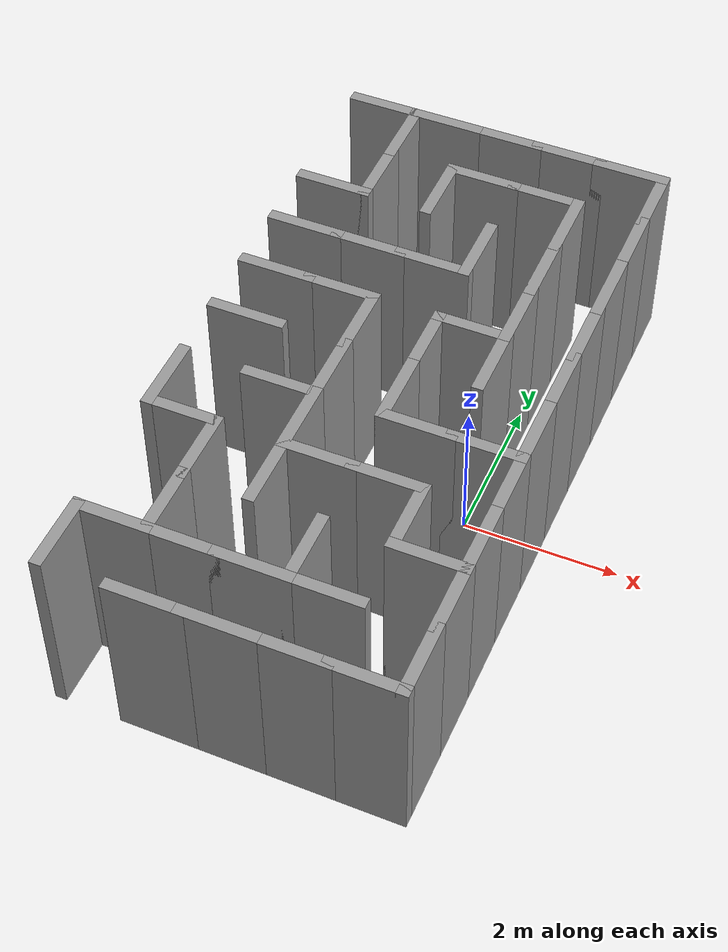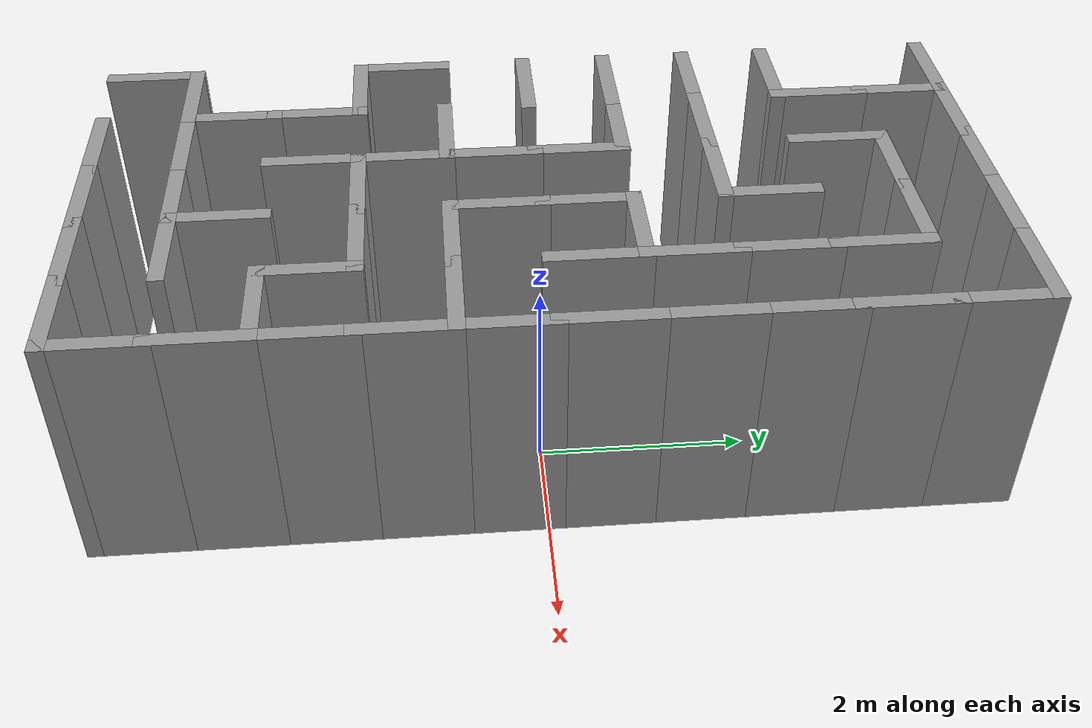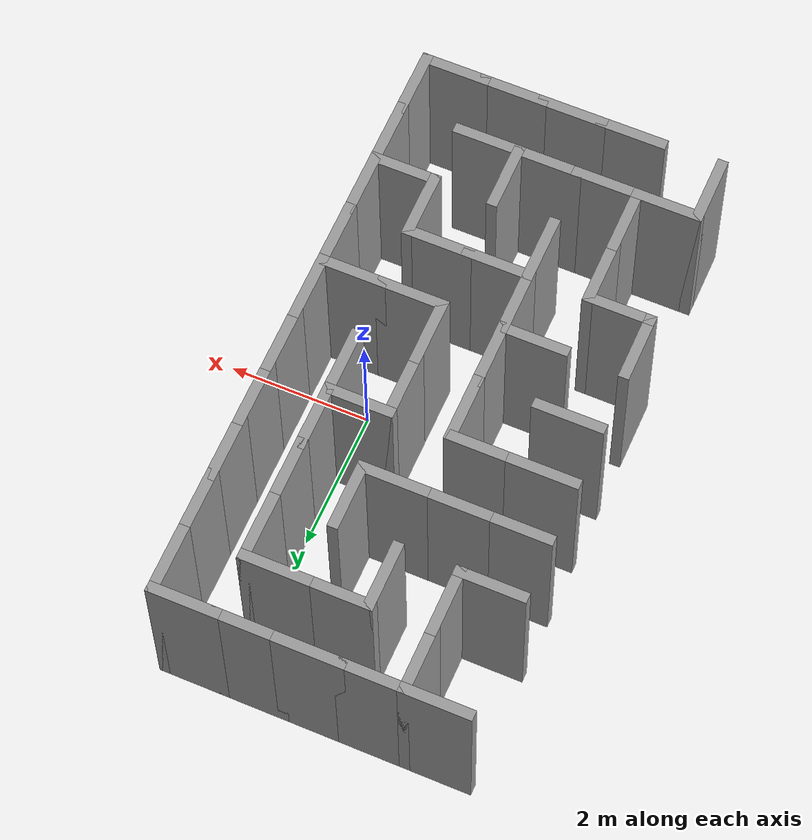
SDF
<sdf version="1.6">
 <model name="maze_2">
  <pose>-3.32543 0.082709 0 0 -0 0</pose>
  <link name="Wall_10">
   <collision name="Wall_10_Collision">
    <geometry><box><size>1 0.15 2.5</size></box></geometry>
    <pose>0 0 1.25 0 -0 0</pose>
   </collision>
   <visual name="Wall_10_Visual">
    <pose>0 0 1.25 0 -0 0</pose>
    <geometry><box><size>1 0.15 2.5</size></box></geometry>
    <material>
     <script><uri>file://media/materials/scripts/gazebo.material</uri><name>Gazebo/Grey</name></script>
     <ambient>1 1 1 1</ambient>
    </material>
    <meta><layer>0</layer></meta>
   </visual>
   <pose>4.25 3.825 0 0 -0 -1.5708</pose>
  </link>
  <link name="Wall_106">
   <collision name="Wall_106_Collision">
    <geometry><box><size>1 0.15 2.5</size></box></geometry>
    <pose>0 0 1.25 0 -0 0</pose>
   </collision>
   <visual name="Wall_106_Visual">
    <pose>0 0 1.25 0 -0 0</pose>
    <geometry><box><size>1 0.15 2.5</size></box></geometry>
    <material>
     <script><uri>file://media/materials/scripts/gazebo.material</uri><name>Gazebo/Grey</name></script>
     <ambient>1 1 1 1</ambient>
    </material>
    <meta><layer>0</layer></meta>
   </visual>
   <pose>1.275 -0.85 0 0 -0 0</pose>
  </link>
  <link name="Wall_108">
   <collision name="Wall_108_Collision">
    <geometry><box><size>1 0.15 2.5</size></box></geometry>
    <pose>0 0 1.25 0 -0 0</pose>
   </collision>
   <visual name="Wall_108_Visual">
    <pose>0 0 1.25 0 -0 0</pose>
    <geometry><box><size>1 0.15 2.5</size></box></geometry>
    <material>
     <script><uri>file://media/materials/scripts/gazebo.material</uri><name>Gazebo/Grey</name></script>
     <ambient>1 1 1 1</ambient>
    </material>
    <meta><layer>0</layer></meta>
   </visual>
   <pose>2.975 -0.85 0 0 -0 0</pose>
  </link>
  <link name="Wall_109">
   <collision name="Wall_109_Collision">
    <geometry><box><size>1 0.15 2.5</size></box></geometry>
    <pose>0 0 1.25 0 -0 0</pose>
   </collision>
   <visual name="Wall_109_Visual">
    <pose>0 0 1.25 0 -0 0</pose>
    <geometry><box><size>1 0.15 2.5</size></box></geometry>
    <material>
     <script><uri>file://media/materials/scripts/gazebo.material</uri><name>Gazebo/Grey</name></script>
     <ambient>1 1 1 1</ambient>
    </material>
    <meta><layer>0</layer></meta>
   </visual>
   <pose>3.825 -0.85 0 0 -0 0</pose>
  </link>
  <link name="Wall_11">
   <collision name="Wall_11_Collision">
    <geometry><box><size>1 0.15 2.5</size></box></geometry>
    <pose>0 0 1.25 0 -0 0</pose>
   </collision>
   <visual name="Wall_11_Visual">
    <pose>0 0 1.25 0 -0 0</pose>
    <geometry><box><size>1 0.15 2.5</size></box></geometry>
    <material>
     <script><uri>file://media/materials/scripts/gazebo.material</uri><name>Gazebo/Grey</name></script>
     <ambient>1 1 1 1</ambient>
    </material>
    <meta><layer>0</layer></meta>
   </visual>
   <pose>4.25 2.975 0 0 -0 -1.5708</pose>
  </link>
  <link name="Wall_112">
   <collision name="Wall_112_Collision">
    <geometry><box><size>1 0.15 2.5</size></box></geometry>
    <pose>0 0 1.25 0 -0 0</pose>
   </collision>
   <visual name="Wall_112_Visual">
    <pose>0 0 1.25 0 -0 0</pose>
    <geometry><box><size>1 0.15 2.5</size></box></geometry>
    <material>
     <script><uri>file://media/materials/scripts/gazebo.material</uri><name>Gazebo/Grey</name></script>
     <ambient>1 1 1 1</ambient>
    </material>
    <meta><layer>0</layer></meta>
   </visual>
   <pose>2.975 -1.7 0 0 -0 3.14159</pose>
  </link>
  <link name="Wall_113">
   <collision name="Wall_113_Collision">
    <geometry><box><size>1 0.15 2.5</size></box></geometry>
    <pose>0 0 1.25 0 -0 0</pose>
   </collision>
   <visual name="Wall_113_Visual">
    <pose>0 0 1.25 0 -0 0</pose>
    <geometry><box><size>1 0.15 2.5</size></box></geometry>
    <material>
     <script><uri>file://media/materials/scripts/gazebo.material</uri><name>Gazebo/Grey</name></script>
     <ambient>1 1 1 1</ambient>
    </material>
    <meta><layer>0</layer></meta>
   </visual>
   <pose>2.125 -1.7 0 0 -0 3.14159</pose>
  </link>
  <link name="Wall_115">
   <collision name="Wall_115_Collision">
    <geometry><box><size>1 0.15 2.5</size></box></geometry>
    <pose>0 0 1.25 0 -0 0</pose>
   </collision>
   <visual name="Wall_115_Visual">
    <pose>0 0 1.25 0 -0 0</pose>
    <geometry><box><size>1 0.15 2.5</size></box></geometry>
    <material>
     <script><uri>file://media/materials/scripts/gazebo.material</uri><name>Gazebo/Grey</name></script>
     <ambient>1 1 1 1</ambient>
    </material>
    <meta><layer>0</layer></meta>
   </visual>
   <pose>0.425 -1.7 0 0 -0 3.14159</pose>
  </link>
  <link name="Wall_12">
   <collision name="Wall_12_Collision">
    <geometry><box><size>1 0.15 2.5</size></box></geometry>
    <pose>0 0 1.25 0 -0 0</pose>
   </collision>
   <visual name="Wall_12_Visual">
    <pose>0 0 1.25 0 -0 0</pose>
    <geometry><box><size>1 0.15 2.5</size></box></geometry>
    <material>
     <script><uri>file://media/materials/scripts/gazebo.material</uri><name>Gazebo/Grey</name></script>
     <ambient>1 1 1 1</ambient>
    </material>
    <meta><layer>0</layer></meta>
   </visual>
   <pose>4.25 2.125 0 0 -0 -1.5708</pose>
  </link>
  <link name="Wall_13">
   <collision name="Wall_13_Collision">
    <geometry><box><size>1 0.15 2.5</size></box></geometry>
    <pose>0 0 1.25 0 -0 0</pose>
   </collision>
   <visual name="Wall_13_Visual">
    <pose>0 0 1.25 0 -0 0</pose>
    <geometry><box><size>1 0.15 2.5</size></box></geometry>
    <material>
     <script><uri>file://media/materials/scripts/gazebo.material</uri><name>Gazebo/Grey</name></script>
     <ambient>1 1 1 1</ambient>
    </material>
    <meta><layer>0</layer></meta>
   </visual>
   <pose>4.25 1.275 0 0 -0 -1.5708</pose>
  </link>
  <link name="Wall_132">
   <collision name="Wall_132_Collision">
    <geometry><box><size>1 0.15 2.5</size></box></geometry>
    <pose>0 0 1.25 0 -0 0</pose>
   </collision>
   <visual name="Wall_132_Visual">
    <pose>0 0 1.25 0 -0 0</pose>
    <geometry><box><size>1 0.15 2.5</size></box></geometry>
    <material>
     <script><uri>file://media/materials/scripts/gazebo.material</uri><name>Gazebo/Grey</name></script>
     <ambient>1 1 1 1</ambient>
    </material>
    <meta><layer>0</layer></meta>
   </visual>
   <pose>3.825 -2.55 0 0 -0 0</pose>
  </link>
  <link name="Wall_139">
   <collision name="Wall_139_Collision">
    <geometry><box><size>1 0.15 2.5</size></box></geometry>
    <pose>0 0 1.25 0 -0 0</pose>
   </collision>
   <visual name="Wall_139_Visual">
    <pose>0 0 1.25 0 -0 0</pose>
    <geometry><box><size>1 0.15 2.5</size></box></geometry>
    <material>
     <script><uri>file://media/materials/scripts/gazebo.material</uri><name>Gazebo/Grey</name></script>
     <ambient>1 1 1 1</ambient>
    </material>
    <meta><layer>0</layer></meta>
   </visual>
   <pose>0.425 -3.4 0 0 -0 0</pose>
  </link>
  <link name="Wall_14">
   <collision name="Wall_14_Collision">
    <geometry><box><size>1 0.15 2.5</size></box></geometry>
    <pose>0 0 1.25 0 -0 0</pose>
   </collision>
   <visual name="Wall_14_Visual">
    <pose>0 0 1.25 0 -0 0</pose>
    <geometry><box><size>1 0.15 2.5</size></box></geometry>
    <material>
     <script><uri>file://media/materials/scripts/gazebo.material</uri><name>Gazebo/Grey</name></script>
     <ambient>1 1 1 1</ambient>
    </material>
    <meta><layer>0</layer></meta>
   </visual>
   <pose>4.25 0.425 0 0 -0 -1.5708</pose>
  </link>
  <link name="Wall_140">
   <collision name="Wall_140_Collision">
    <geometry><box><size>1 0.15 2.5</size></box></geometry>
    <pose>0 0 1.25 0 -0 0</pose>
   </collision>
   <visual name="Wall_140_Visual">
    <pose>0 0 1.25 0 -0 0</pose>
    <geometry><box><size>1 0.15 2.5</size></box></geometry>
    <material>
     <script><uri>file://media/materials/scripts/gazebo.material</uri><name>Gazebo/Grey</name></script>
     <ambient>1 1 1 1</ambient>
    </material>
    <meta><layer>0</layer></meta>
   </visual>
   <pose>1.275 -3.4 0 0 -0 0</pose>
  </link>
  <link name="Wall_141">
   <collision name="Wall_141_Collision">
    <geometry><box><size>1 0.15 2.5</size></box></geometry>
    <pose>0 0 1.25 0 -0 0</pose>
   </collision>
   <visual name="Wall_141_Visual">
    <pose>0 0 1.25 0 -0 0</pose>
    <geometry><box><size>1 0.15 2.5</size></box></geometry>
    <material>
     <script><uri>file://media/materials/scripts/gazebo.material</uri><name>Gazebo/Grey</name></script>
     <ambient>1 1 1 1</ambient>
    </material>
    <meta><layer>0</layer></meta>
   </visual>
   <pose>2.125 -3.4 0 0 -0 0</pose>
  </link>
  <link name="Wall_142">
   <collision name="Wall_142_Collision">
    <geometry><box><size>1 0.15 2.5</size></box></geometry>
    <pose>0 0 1.25 0 -0 0</pose>
   </collision>
   <visual name="Wall_142_Visual">
    <pose>0 0 1.25 0 -0 0</pose>
    <geometry><box><size>1 0.15 2.5</size></box></geometry>
    <material>
     <script><uri>file://media/materials/scripts/gazebo.material</uri><name>Gazebo/Grey</name></script>
     <ambient>1 1 1 1</ambient>
    </material>
    <meta><layer>0</layer></meta>
   </visual>
   <pose>2.975 -3.4 0 0 -0 0</pose>
  </link>
  <link name="Wall_15">
   <collision name="Wall_15_Collision">
    <geometry><box><size>1 0.15 2.5</size></box></geometry>
    <pose>0 0 1.25 0 -0 0</pose>
   </collision>
   <visual name="Wall_15_Visual">
    <pose>0 0 1.25 0 -0 0</pose>
    <geometry><box><size>1 0.15 2.5</size></box></geometry>
    <material>
     <script><uri>file://media/materials/scripts/gazebo.material</uri><name>Gazebo/Grey</name></script>
     <ambient>1 1 1 1</ambient>
    </material>
    <meta><layer>0</layer></meta>
   </visual>
   <pose>4.25 -0.425 0 0 -0 -1.5708</pose>
  </link>
  <link name="Wall_18">
   <collision name="Wall_18_Collision">
    <geometry><box><size>1 0.15 2.5</size></box></geometry>
    <pose>0 0 1.25 0 -0 0</pose>
   </collision>
   <visual name="Wall_18_Visual">
    <pose>0 0 1.25 0 -0 0</pose>
    <geometry><box><size>1 0.15 2.5</size></box></geometry>
    <material>
     <script><uri>file://media/materials/scripts/gazebo.material</uri><name>Gazebo/Grey</name></script>
     <ambient>1 1 1 1</ambient>
    </material>
    <meta><layer>0</layer></meta>
   </visual>
   <pose>4.25 -1.275 0 0 -0 -1.5708</pose>
  </link>
  <link name="Wall_19">
   <collision name="Wall_19_Collision">
    <geometry><box><size>1 0.15 2.5</size></box></geometry>
    <pose>0 0 1.25 0 -0 0</pose>
   </collision>
   <visual name="Wall_19_Visual">
    <pose>0 0 1.25 0 -0 0</pose>
    <geometry><box><size>1 0.15 2.5</size></box></geometry>
    <material>
     <script><uri>file://media/materials/scripts/gazebo.material</uri><name>Gazebo/Grey</name></script>
     <ambient>1 1 1 1</ambient>
    </material>
    <meta><layer>0</layer></meta>
   </visual>
   <pose>4.25 -2.125 0 0 -0 -1.5708</pose>
  </link>
  <link name="Wall_195">
   <collision name="Wall_195_Collision">
    <geometry><box><size>1 0.15 2.5</size></box></geometry>
    <pose>0 0 1.25 0 -0 0</pose>
   </collision>
   <visual name="Wall_195_Visual">
    <pose>0 0 1.25 0 -0 0</pose>
    <geometry><box><size>1 0.15 2.5</size></box></geometry>
    <material>
     <script><uri>file://media/materials/scripts/gazebo.material</uri><name>Gazebo/Grey</name></script>
     <ambient>1 1 1 1</ambient>
    </material>
    <meta><layer>0</layer></meta>
   </visual>
   <pose>0 -1.275 0 0 -0 -1.5708</pose>
  </link>
  <link name="Wall_198">
   <collision name="Wall_198_Collision">
    <geometry><box><size>1 0.15 2.5</size></box></geometry>
    <pose>0 0 1.25 0 -0 0</pose>
   </collision>
   <visual name="Wall_198_Visual">
    <pose>0 0 1.25 0 -0 0</pose>
    <geometry><box><size>1 0.15 2.5</size></box></geometry>
    <material>
     <script><uri>file://media/materials/scripts/gazebo.material</uri><name>Gazebo/Grey</name></script>
     <ambient>1 1 1 1</ambient>
    </material>
    <meta><layer>0</layer></meta>
   </visual>
   <pose>0 -3.825 0 0 -0 -1.5708</pose>
  </link>
  <link name="Wall_20">
   <collision name="Wall_20_Collision">
    <geometry><box><size>1 0.15 2.5</size></box></geometry>
    <pose>0 0 1.25 0 -0 0</pose>
   </collision>
   <visual name="Wall_20_Visual">
    <pose>0 0 1.25 0 -0 0</pose>
    <geometry><box><size>1 0.15 2.5</size></box></geometry>
    <material>
     <script><uri>file://media/materials/scripts/gazebo.material</uri><name>Gazebo/Grey</name></script>
     <ambient>1 1 1 1</ambient>
    </material>
    <meta><layer>0</layer></meta>
   </visual>
   <pose>4.25 -2.975 0 0 -0 -1.5708</pose>
  </link>
  <link name="Wall_201">
   <collision name="Wall_201_Collision">
    <geometry><box><size>1 0.15 2.5</size></box></geometry>
    <pose>0 0 1.25 0 -0 0</pose>
   </collision>
   <visual name="Wall_201_Visual">
    <pose>0 0 1.25 0 -0 0</pose>
    <geometry><box><size>1 0.15 2.5</size></box></geometry>
    <material>
     <script><uri>file://media/materials/scripts/gazebo.material</uri><name>Gazebo/Grey</name></script>
     <ambient>1 1 1 1</ambient>
    </material>
    <meta><layer>0</layer></meta>
   </visual>
   <pose>0.85 2.975 0 0 -0 -1.5708</pose>
  </link>
  <link name="Wall_207">
   <collision name="Wall_207_Collision">
    <geometry><box><size>1 0.15 2.5</size></box></geometry>
    <pose>0 0 1.25 0 -0 0</pose>
   </collision>
   <visual name="Wall_207_Visual">
    <pose>0 0 1.25 0 -0 0</pose>
    <geometry><box><size>1 0.15 2.5</size></box></geometry>
    <material>
     <script><uri>file://media/materials/scripts/gazebo.material</uri><name>Gazebo/Grey</name></script>
     <ambient>1 1 1 1</ambient>
    </material>
    <meta><layer>0</layer></meta>
   </visual>
   <pose>0.85 -2.125 0 0 -0 -1.5708</pose>
  </link>
  <link name="Wall_208">
   <collision name="Wall_208_Collision">
    <geometry><box><size>1 0.15 2.5</size></box></geometry>
    <pose>0 0 1.25 0 -0 0</pose>
   </collision>
   <visual name="Wall_208_Visual">
    <pose>0 0 1.25 0 -0 0</pose>
    <geometry><box><size>1 0.15 2.5</size></box></geometry>
    <material>
     <script><uri>file://media/materials/scripts/gazebo.material</uri><name>Gazebo/Grey</name></script>
     <ambient>1 1 1 1</ambient>
    </material>
    <meta><layer>0</layer></meta>
   </visual>
   <pose>0.85 -2.975 0 0 -0 -1.5708</pose>
  </link>
  <link name="Wall_21">
   <collision name="Wall_21_Collision">
    <geometry><box><size>1 0.15 2.5</size></box></geometry>
    <pose>0 0 1.25 0 -0 0</pose>
   </collision>
   <visual name="Wall_21_Visual">
    <pose>0 0 1.25 0 -0 0</pose>
    <geometry><box><size>1 0.15 2.5</size></box></geometry>
    <material>
     <script><uri>file://media/materials/scripts/gazebo.material</uri><name>Gazebo/Grey</name></script>
     <ambient>1 1 1 1</ambient>
    </material>
    <meta><layer>0</layer></meta>
   </visual>
   <pose>4.25 -3.825 0 0 -0 -1.5708</pose>
  </link>
  <link name="Wall_212">
   <collision name="Wall_212_Collision">
    <geometry><box><size>1 0.15 2.5</size></box></geometry>
    <pose>0 0 1.25 0 -0 0</pose>
   </collision>
   <visual name="Wall_212_Visual">
    <pose>0 0 1.25 0 -0 0</pose>
    <geometry><box><size>1 0.15 2.5</size></box></geometry>
    <material>
     <script><uri>file://media/materials/scripts/gazebo.material</uri><name>Gazebo/Grey</name></script>
     <ambient>1 1 1 1</ambient>
    </material>
    <meta><layer>0</layer></meta>
   </visual>
   <pose>1.7 2.975 0 0 -0 -1.5708</pose>
  </link>
  <link name="Wall_215">
   <collision name="Wall_215_Collision">
    <geometry><box><size>1 0.15 2.5</size></box></geometry>
    <pose>0 0 1.25 0 -0 0</pose>
   </collision>
   <visual name="Wall_215_Visual">
    <pose>0 0 1.25 0 -0 0</pose>
    <geometry><box><size>1 0.15 2.5</size></box></geometry>
    <material>
     <script><uri>file://media/materials/scripts/gazebo.material</uri><name>Gazebo/Grey</name></script>
     <ambient>1 1 1 1</ambient>
    </material>
    <meta><layer>0</layer></meta>
   </visual>
   <pose>1.7 0.425 0 0 -0 -1.5708</pose>
  </link>
  <link name="Wall_216">
   <collision name="Wall_216_Collision">
    <geometry><box><size>1 0.15 2.5</size></box></geometry>
    <pose>0 0 1.25 0 -0 0</pose>
   </collision>
   <visual name="Wall_216_Visual">
    <pose>0 0 1.25 0 -0 0</pose>
    <geometry><box><size>1 0.15 2.5</size></box></geometry>
    <material>
     <script><uri>file://media/materials/scripts/gazebo.material</uri><name>Gazebo/Grey</name></script>
     <ambient>1 1 1 1</ambient>
    </material>
    <meta><layer>0</layer></meta>
   </visual>
   <pose>1.7 -0.425 0 0 -0 -1.5708</pose>
  </link>
  <link name="Wall_217">
   <collision name="Wall_217_Collision">
    <geometry><box><size>1 0.15 2.5</size></box></geometry>
    <pose>0 0 1.25 0 -0 0</pose>
   </collision>
   <visual name="Wall_217_Visual">
    <pose>0 0 1.25 0 -0 0</pose>
    <geometry><box><size>1 0.15 2.5</size></box></geometry>
    <material>
     <script><uri>file://media/materials/scripts/gazebo.material</uri><name>Gazebo/Grey</name></script>
     <ambient>1 1 1 1</ambient>
    </material>
    <meta><layer>0</layer></meta>
   </visual>
   <pose>1.7 -1.275 0 0 -0 -1.5708</pose>
  </link>
  <link name="Wall_218">
   <collision name="Wall_218_Collision">
    <geometry><box><size>1 0.15 2.5</size></box></geometry>
    <pose>0 0 1.25 0 -0 0</pose>
   </collision>
   <visual name="Wall_218_Visual">
    <pose>0 0 1.25 0 -0 0</pose>
    <geometry><box><size>1 0.15 2.5</size></box></geometry>
    <material>
     <script><uri>file://media/materials/scripts/gazebo.material</uri><name>Gazebo/Grey</name></script>
     <ambient>1 1 1 1</ambient>
    </material>
    <meta><layer>0</layer></meta>
   </visual>
   <pose>1.7 -2.125 0 0 -0 -1.5708</pose>
  </link>
  <link name="Wall_22">
   <collision name="Wall_22_Collision">
    <geometry><box><size>1 0.15 2.5</size></box></geometry>
    <pose>0 0 1.25 0 -0 0</pose>
   </collision>
   <visual name="Wall_22_Visual">
    <pose>0 0 1.25 0 -0 0</pose>
    <geometry><box><size>1 0.15 2.5</size></box></geometry>
    <material>
     <script><uri>file://media/materials/scripts/gazebo.material</uri><name>Gazebo/Grey</name></script>
     <ambient>1 1 1 1</ambient>
    </material>
    <meta><layer>0</layer></meta>
   </visual>
   <pose>3.825 -4.25 0 0 -0 3.14159</pose>
  </link>
  <link name="Wall_224">
   <collision name="Wall_224_Collision">
    <geometry><box><size>1 0.15 2.5</size></box></geometry>
    <pose>0 0 1.25 0 -0 0</pose>
   </collision>
   <visual name="Wall_224_Visual">
    <pose>0 0 1.25 0 -0 0</pose>
    <geometry><box><size>1 0.15 2.5</size></box></geometry>
    <material>
     <script><uri>file://media/materials/scripts/gazebo.material</uri><name>Gazebo/Grey</name></script>
     <ambient>1 1 1 1</ambient>
    </material>
    <meta><layer>0</layer></meta>
   </visual>
   <pose>2.55 2.125 0 0 -0 -1.5708</pose>
  </link>
  <link name="Wall_226">
   <collision name="Wall_226_Collision">
    <geometry><box><size>1 0.15 2.5</size></box></geometry>
    <pose>0 0 1.25 0 -0 0</pose>
   </collision>
   <visual name="Wall_226_Visual">
    <pose>0 0 1.25 0 -0 0</pose>
    <geometry><box><size>1 0.15 2.5</size></box></geometry>
    <material>
     <script><uri>file://media/materials/scripts/gazebo.material</uri><name>Gazebo/Grey</name></script>
     <ambient>1 1 1 1</ambient>
    </material>
    <meta><layer>0</layer></meta>
   </visual>
   <pose>2.55 0.425 0 0 -0 -1.5708</pose>
  </link>
  <link name="Wall_227">
   <collision name="Wall_227_Collision">
    <geometry><box><size>1 0.15 2.5</size></box></geometry>
    <pose>0 0 1.25 0 -0 0</pose>
   </collision>
   <visual name="Wall_227_Visual">
    <pose>0 0 1.25 0 -0 0</pose>
    <geometry><box><size>1 0.15 2.5</size></box></geometry>
    <material>
     <script><uri>file://media/materials/scripts/gazebo.material</uri><name>Gazebo/Grey</name></script>
     <ambient>1 1 1 1</ambient>
    </material>
    <meta><layer>0</layer></meta>
   </visual>
   <pose>2.55 -0.425 0 0 -0 -1.5708</pose>
  </link>
  <link name="Wall_23">
   <collision name="Wall_23_Collision">
    <geometry><box><size>1 0.15 2.5</size></box></geometry>
    <pose>0 0 1.25 0 -0 0</pose>
   </collision>
   <visual name="Wall_23_Visual">
    <pose>0 0 1.25 0 -0 0</pose>
    <geometry><box><size>1 0.15 2.5</size></box></geometry>
    <material>
     <script><uri>file://media/materials/scripts/gazebo.material</uri><name>Gazebo/Grey</name></script>
     <ambient>1 1 1 1</ambient>
    </material>
    <meta><layer>0</layer></meta>
   </visual>
   <pose>2.975 -4.25 0 0 -0 3.14159</pose>
  </link>
  <link name="Wall_230">
   <collision name="Wall_230_Collision">
    <geometry><box><size>1 0.15 2.5</size></box></geometry>
    <pose>0 0 1.25 0 -0 0</pose>
   </collision>
   <visual name="Wall_230_Visual">
    <pose>0 0 1.25 0 -0 0</pose>
    <geometry><box><size>1 0.15 2.5</size></box></geometry>
    <material>
     <script><uri>file://media/materials/scripts/gazebo.material</uri><name>Gazebo/Grey</name></script>
     <ambient>1 1 1 1</ambient>
    </material>
    <meta><layer>0</layer></meta>
   </visual>
   <pose>2.55 -2.975 0 0 -0 -1.5708</pose>
  </link>
  <link name="Wall_234">
   <collision name="Wall_234_Collision">
    <geometry><box><size>1 0.15 2.5</size></box></geometry>
    <pose>0 0 1.25 0 -0 0</pose>
   </collision>
   <visual name="Wall_234_Visual">
    <pose>0 0 1.25 0 -0 0</pose>
    <geometry><box><size>1 0.15 2.5</size></box></geometry>
    <material>
     <script><uri>file://media/materials/scripts/gazebo.material</uri><name>Gazebo/Grey</name></script>
     <ambient>1 1 1 1</ambient>
    </material>
    <meta><layer>0</layer></meta>
   </visual>
   <pose>3.4 2.975 0 0 -0 -1.5708</pose>
  </link>
  <link name="Wall_235">
   <collision name="Wall_235_Collision">
    <geometry><box><size>1 0.15 2.5</size></box></geometry>
    <pose>0 0 1.25 0 -0 0</pose>
   </collision>
   <visual name="Wall_235_Visual">
    <pose>0 0 1.25 0 -0 0</pose>
    <geometry><box><size>1 0.15 2.5</size></box></geometry>
    <material>
     <script><uri>file://media/materials/scripts/gazebo.material</uri><name>Gazebo/Grey</name></script>
     <ambient>1 1 1 1</ambient>
    </material>
    <meta><layer>0</layer></meta>
   </visual>
   <pose>3.4 2.125 0 0 -0 -1.5708</pose>
  </link>
  <link name="Wall_236">
   <collision name="Wall_236_Collision">
    <geometry><box><size>1 0.15 2.5</size></box></geometry>
    <pose>0 0 1.25 0 -0 0</pose>
   </collision>
   <visual name="Wall_236_Visual">
    <pose>0 0 1.25 0 -0 0</pose>
    <geometry><box><size>1 0.15 2.5</size></box></geometry>
    <material>
     <script><uri>file://media/materials/scripts/gazebo.material</uri><name>Gazebo/Grey</name></script>
     <ambient>1 1 1 1</ambient>
    </material>
    <meta><layer>0</layer></meta>
   </visual>
   <pose>3.4 1.275 0 0 -0 -1.5708</pose>
  </link>
  <link name="Wall_237">
   <collision name="Wall_237_Collision">
    <geometry><box><size>1 0.15 2.5</size></box></geometry>
    <pose>0 0 1.25 0 -0 0</pose>
   </collision>
   <visual name="Wall_237_Visual">
    <pose>0 0 1.25 0 -0 0</pose>
    <geometry><box><size>1 0.15 2.5</size></box></geometry>
    <material>
     <script><uri>file://media/materials/scripts/gazebo.material</uri><name>Gazebo/Grey</name></script>
     <ambient>1 1 1 1</ambient>
    </material>
    <meta><layer>0</layer></meta>
   </visual>
   <pose>3.4 0.425 0 0 -0 -1.5708</pose>
  </link>
  <link name="Wall_24">
   <collision name="Wall_24_Collision">
    <geometry><box><size>1 0.15 2.5</size></box></geometry>
    <pose>0 0 1.25 0 -0 0</pose>
   </collision>
   <visual name="Wall_24_Visual">
    <pose>0 0 1.25 0 -0 0</pose>
    <geometry><box><size>1 0.15 2.5</size></box></geometry>
    <material>
     <script><uri>file://media/materials/scripts/gazebo.material</uri><name>Gazebo/Grey</name></script>
     <ambient>1 1 1 1</ambient>
    </material>
    <meta><layer>0</layer></meta>
   </visual>
   <pose>2.125 -4.25 0 0 -0 3.14159</pose>
  </link>
  <link name="Wall_240">
   <collision name="Wall_240_Collision">
    <geometry><box><size>1 0.15 2.5</size></box></geometry>
    <pose>0 0 1.25 0 -0 0</pose>
   </collision>
   <visual name="Wall_240_Visual">
    <pose>0 0 1.25 0 -0 0</pose>
    <geometry><box><size>1 0.15 2.5</size></box></geometry>
    <material>
     <script><uri>file://media/materials/scripts/gazebo.material</uri><name>Gazebo/Grey</name></script>
     <ambient>1 1 1 1</ambient>
    </material>
    <meta><layer>0</layer></meta>
   </visual>
   <pose>3.4 -2.125 0 0 -0 -1.5708</pose>
  </link>
  <link name="Wall_244">
   <collision name="Wall_244_Collision">
    <geometry><box><size>1 0.15 2.5</size></box></geometry>
    <pose>0 0 1.25 0 -0 0</pose>
   </collision>
   <visual name="Wall_244_Visual">
    <pose>0 0 1.25 0 -0 0</pose>
    <geometry><box><size>1 0.15 2.5</size></box></geometry>
    <material>
     <script><uri>file://media/materials/scripts/gazebo.material</uri><name>Gazebo/Grey</name></script>
     <ambient>1 1 1 1</ambient>
    </material>
    <meta><layer>0</layer></meta>
   </visual>
   <pose>0.425 4.25 0 0 -0 0</pose>
  </link>
  <link name="Wall_246">
   <collision name="Wall_246_Collision">
    <geometry><box><size>1 0.15 2.5</size></box></geometry>
    <pose>0 0 1.25 0 -0 0</pose>
   </collision>
   <visual name="Wall_246_Visual">
    <pose>0 0 1.25 0 -0 0</pose>
    <geometry><box><size>1 0.15 2.5</size></box></geometry>
    <material>
     <script><uri>file://media/materials/scripts/gazebo.material</uri><name>Gazebo/Grey</name></script>
     <ambient>1 1 1 1</ambient>
    </material>
    <meta><layer>0</layer></meta>
   </visual>
   <pose>0.85 3.825 0 0 -0 -1.5708</pose>
  </link>
  <link name="Wall_25">
   <collision name="Wall_25_Collision">
    <geometry><box><size>1 0.15 2.5</size></box></geometry>
    <pose>0 0 1.25 0 -0 0</pose>
   </collision>
   <visual name="Wall_25_Visual">
    <pose>0 0 1.25 0 -0 0</pose>
    <geometry><box><size>1 0.15 2.5</size></box></geometry>
    <material>
     <script><uri>file://media/materials/scripts/gazebo.material</uri><name>Gazebo/Grey</name></script>
     <ambient>1 1 1 1</ambient>
    </material>
    <meta><layer>0</layer></meta>
   </visual>
   <pose>1.275 -4.25 0 0 -0 3.14159</pose>
  </link>
  <link name="Wall_50">
   <collision name="Wall_50_Collision">
    <geometry><box><size>1 0.15 2.5</size></box></geometry>
    <pose>0 0 1.25 0 -0 0</pose>
   </collision>
   <visual name="Wall_50_Visual">
    <pose>0 0 1.25 0 -0 0</pose>
    <geometry><box><size>1 0.15 2.5</size></box></geometry>
    <material>
     <script><uri>file://media/materials/scripts/gazebo.material</uri><name>Gazebo/Grey</name></script>
     <ambient>1 1 1 1</ambient>
    </material>
    <meta><layer>0</layer></meta>
   </visual>
   <pose>2.125 3.4 0 0 -0 0</pose>
  </link>
  <link name="Wall_51">
   <collision name="Wall_51_Collision">
    <geometry><box><size>1 0.15 2.5</size></box></geometry>
    <pose>0 0 1.25 0 -0 0</pose>
   </collision>
   <visual name="Wall_51_Visual">
    <pose>0 0 1.25 0 -0 0</pose>
    <geometry><box><size>1 0.15 2.5</size></box></geometry>
    <material>
     <script><uri>file://media/materials/scripts/gazebo.material</uri><name>Gazebo/Grey</name></script>
     <ambient>1 1 1 1</ambient>
    </material>
    <meta><layer>0</layer></meta>
   </visual>
   <pose>2.975 3.4 0 0 -0 0</pose>
  </link>
  <link name="Wall_6">
   <collision name="Wall_6_Collision">
    <geometry><box><size>1 0.15 2.5</size></box></geometry>
    <pose>0 0 1.25 0 -0 0</pose>
   </collision>
   <visual name="Wall_6_Visual">
    <pose>0 0 1.25 0 -0 0</pose>
    <geometry><box><size>1 0.15 2.5</size></box></geometry>
    <material>
     <script><uri>file://media/materials/scripts/gazebo.material</uri><name>Gazebo/Grey</name></script>
     <ambient>1 1 1 1</ambient>
    </material>
    <meta><layer>0</layer></meta>
   </visual>
   <pose>1.275 4.25 0 0 -0 0</pose>
  </link>
  <link name="Wall_61">
   <collision name="Wall_61_Collision">
    <geometry><box><size>1 0.15 2.5</size></box></geometry>
    <pose>0 0 1.25 0 -0 0</pose>
   </collision>
   <visual name="Wall_61_Visual">
    <pose>0 0 1.25 0 -0 0</pose>
    <geometry><box><size>1 0.15 2.5</size></box></geometry>
    <material>
     <script><uri>file://media/materials/scripts/gazebo.material</uri><name>Gazebo/Grey</name></script>
     <ambient>1 1 1 1</ambient>
    </material>
    <meta><layer>0</layer></meta>
   </visual>
   <pose>0.425 2.55 0 0 -0 0</pose>
  </link>
  <link name="Wall_69">
   <collision name="Wall_69_Collision">
    <geometry><box><size>1 0.15 2.5</size></box></geometry>
    <pose>0 0 1.25 0 -0 0</pose>
   </collision>
   <visual name="Wall_69_Visual">
    <pose>0 0 1.25 0 -0 0</pose>
    <geometry><box><size>1 0.15 2.5</size></box></geometry>
    <material>
     <script><uri>file://media/materials/scripts/gazebo.material</uri><name>Gazebo/Grey</name></script>
     <ambient>1 1 1 1</ambient>
    </material>
    <meta><layer>0</layer></meta>
   </visual>
   <pose>2.125 1.7 0 0 -0 3.14159</pose>
  </link>
  <link name="Wall_7">
   <collision name="Wall_7_Collision">
    <geometry><box><size>1 0.15 2.5</size></box></geometry>
    <pose>0 0 1.25 0 -0 0</pose>
   </collision>
   <visual name="Wall_7_Visual">
    <pose>0 0 1.25 0 -0 0</pose>
    <geometry><box><size>1 0.15 2.5</size></box></geometry>
    <material>
     <script><uri>file://media/materials/scripts/gazebo.material</uri><name>Gazebo/Grey</name></script>
     <ambient>1 1 1 1</ambient>
    </material>
    <meta><layer>0</layer></meta>
   </visual>
   <pose>2.125 4.25 0 0 -0 0</pose>
  </link>
  <link name="Wall_70">
   <collision name="Wall_70_Collision">
    <geometry><box><size>1 0.15 2.5</size></box></geometry>
    <pose>0 0 1.25 0 -0 0</pose>
   </collision>
   <visual name="Wall_70_Visual">
    <pose>0 0 1.25 0 -0 0</pose>
    <geometry><box><size>1 0.15 2.5</size></box></geometry>
    <material>
     <script><uri>file://media/materials/scripts/gazebo.material</uri><name>Gazebo/Grey</name></script>
     <ambient>1 1 1 1</ambient>
    </material>
    <meta><layer>0</layer></meta>
   </visual>
   <pose>1.275 1.7 0 0 -0 3.14159</pose>
  </link>
  <link name="Wall_71">
   <collision name="Wall_71_Collision">
    <geometry><box><size>1 0.15 2.5</size></box></geometry>
    <pose>0 0 1.25 0 -0 0</pose>
   </collision>
   <visual name="Wall_71_Visual">
    <pose>0 0 1.25 0 -0 0</pose>
    <geometry><box><size>1 0.15 2.5</size></box></geometry>
    <material>
     <script><uri>file://media/materials/scripts/gazebo.material</uri><name>Gazebo/Grey</name></script>
     <ambient>1 1 1 1</ambient>
    </material>
    <meta><layer>0</layer></meta>
   </visual>
   <pose>0.425 1.7 0 0 -0 3.14159</pose>
  </link>
  <link name="Wall_8">
   <collision name="Wall_8_Collision">
    <geometry><box><size>1 0.15 2.5</size></box></geometry>
    <pose>0 0 1.25 0 -0 0</pose>
   </collision>
   <visual name="Wall_8_Visual">
    <pose>0 0 1.25 0 -0 0</pose>
    <geometry><box><size>1 0.15 2.5</size></box></geometry>
    <material>
     <script><uri>file://media/materials/scripts/gazebo.material</uri><name>Gazebo/Grey</name></script>
     <ambient>1 1 1 1</ambient>
    </material>
    <meta><layer>0</layer></meta>
   </visual>
   <pose>2.975 4.25 0 0 -0 0</pose>
  </link>
  <link name="Wall_83">
   <collision name="Wall_83_Collision">
    <geometry><box><size>1 0.15 2.5</size></box></geometry>
    <pose>0 0 1.25 0 -0 0</pose>
   </collision>
   <visual name="Wall_83_Visual">
    <pose>0 0 1.25 0 -0 0</pose>
    <geometry><box><size>1 0.15 2.5</size></box></geometry>
    <material>
     <script><uri>file://media/materials/scripts/gazebo.material</uri><name>Gazebo/Grey</name></script>
     <ambient>1 1 1 1</ambient>
    </material>
    <meta><layer>0</layer></meta>
   </visual>
   <pose>0.425 0.85 0 0 -0 0</pose>
  </link>
  <link name="Wall_84">
   <collision name="Wall_84_Collision">
    <geometry><box><size>1 0.15 2.5</size></box></geometry>
    <pose>0 0 1.25 0 -0 0</pose>
   </collision>
   <visual name="Wall_84_Visual">
    <pose>0 0 1.25 0 -0 0</pose>
    <geometry><box><size>1 0.15 2.5</size></box></geometry>
    <material>
     <script><uri>file://media/materials/scripts/gazebo.material</uri><name>Gazebo/Grey</name></script>
     <ambient>1 1 1 1</ambient>
    </material>
    <meta><layer>0</layer></meta>
   </visual>
   <pose>1.275 0.85 0 0 -0 0</pose>
  </link>
  <link name="Wall_86">
   <collision name="Wall_86_Collision">
    <geometry><box><size>1 0.15 2.5</size></box></geometry>
    <pose>0 0 1.25 0 -0 0</pose>
   </collision>
   <visual name="Wall_86_Visual">
    <pose>0 0 1.25 0 -0 0</pose>
    <geometry><box><size>1 0.15 2.5</size></box></geometry>
    <material>
     <script><uri>file://media/materials/scripts/gazebo.material</uri><name>Gazebo/Grey</name></script>
     <ambient>1 1 1 1</ambient>
    </material>
    <meta><layer>0</layer></meta>
   </visual>
   <pose>2.975 0.85 0 0 -0 0</pose>
  </link>
  <link name="Wall_9">
   <collision name="Wall_9_Collision">
    <geometry><box><size>1 0.15 2.5</size></box></geometry>
    <pose>0 0 1.25 0 -0 0</pose>
   </collision>
   <visual name="Wall_9_Visual">
    <pose>0 0 1.25 0 -0 0</pose>
    <geometry><box><size>1 0.15 2.5</size></box></geometry>
    <material>
     <script><uri>file://media/materials/scripts/gazebo.material</uri><name>Gazebo/Grey</name></script>
     <ambient>1 1 1 1</ambient>
    </material>
    <meta><layer>0</layer></meta>
   </visual>
   <pose>3.825 4.25 0 0 -0 0</pose>
  </link>
  <link name="Wall_93">
   <collision name="Wall_93_Collision">
    <geometry><box><size>1 0.15 2.5</size></box></geometry>
    <pose>0 0 1.25 0 -0 0</pose>
   </collision>
   <visual name="Wall_93_Visual">
    <pose>0 0 1.25 0 -0 0</pose>
    <geometry><box><size>1 0.15 2.5</size></box></geometry>
    <material>
     <script><uri>file://media/materials/scripts/gazebo.material</uri><name>Gazebo/Grey</name></script>
     <ambient>1 1 1 1</ambient>
    </material>
    <meta><layer>0</layer></meta>
   </visual>
   <pose>0.425 0 0 0 -0 3.14159</pose>
  </link>
  <static>1</static>
 </model>
</sdf>
